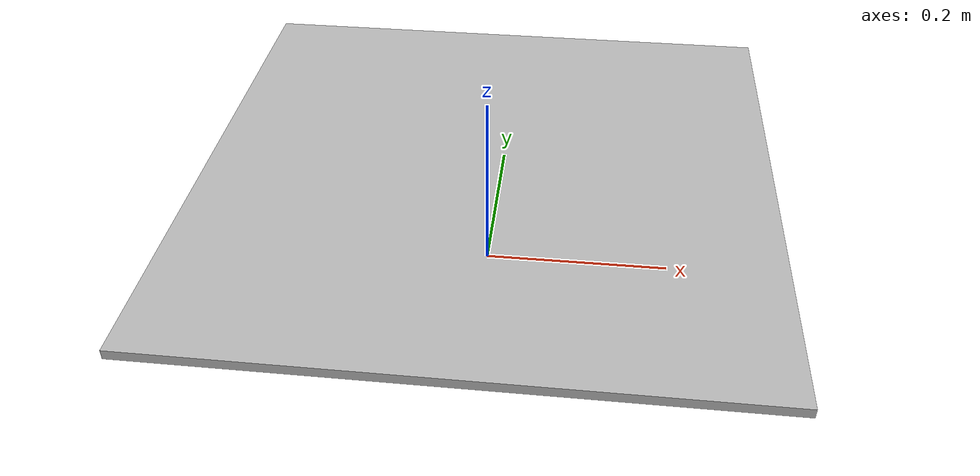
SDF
<?xml version='1.0'?>
<sdf version='1.4'>
  <model name="mark_label_0">
    <link name='link'>
      <pose>0 0 0.115 0 0 0</pose>
      <inertial>
        <mass>0.8</mass>
        <inertia>
          <ixx>0.00058</ixx>
          <ixy>0</ixy>
          <ixz>0</ixz>
          <iyy>0.00058</iyy>
          <iyz>0</iyz>
          <izz>0.00019</izz>
        </inertia>
      </inertial>
      <collision name='collision'>
        <geometry>
                <box>
                  <size>.600 .600 .01</size>
                </box>
        </geometry>
      </collision>

      <visual name='visual'>
        <geometry>
                <box>
                  <size>.600 .600 .01</size>
                </box>
        </geometry>

        <material>
          <script>
            <uri>model://mark_label_0/materials/scripts</uri>
            <uri>model://mark_label_0/materials/textures</uri>
            <name>Mark/Diffuse_0</name>
          </script>
        </material>
      </visual>
    </link>     
  </model>
</sdf>
